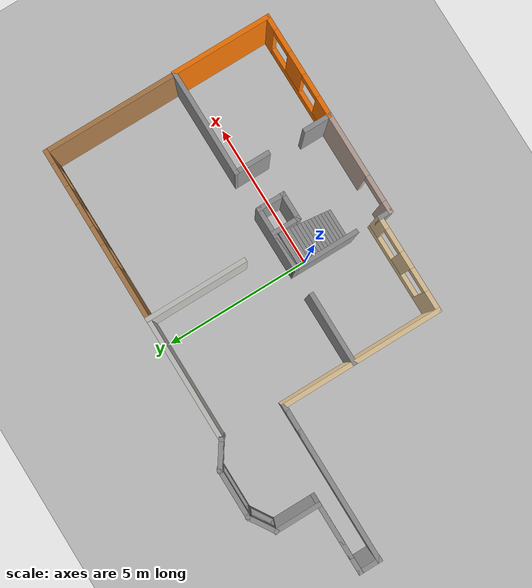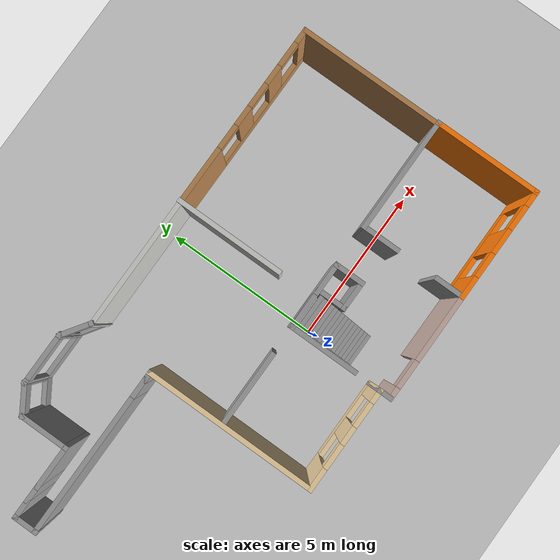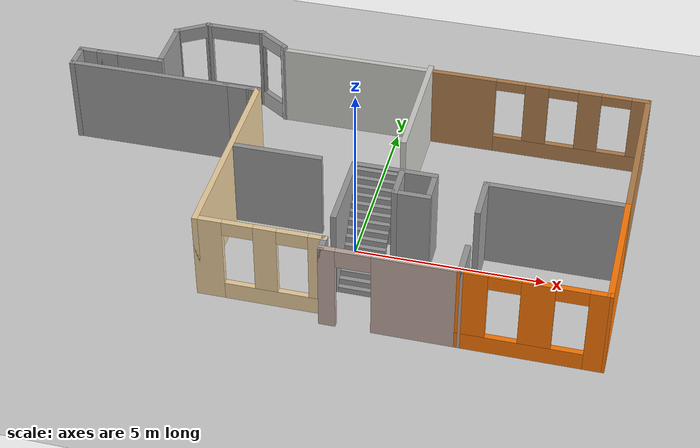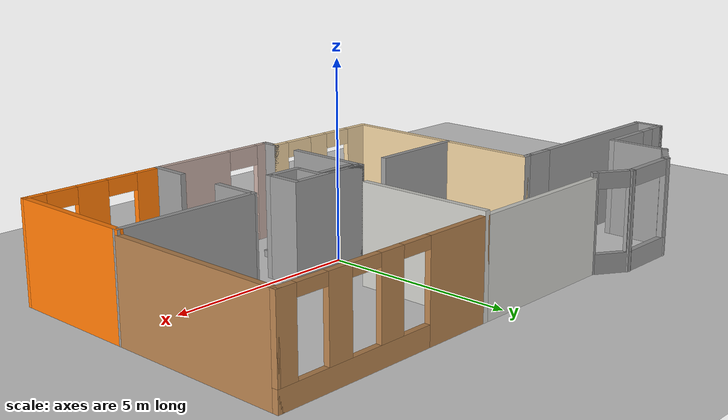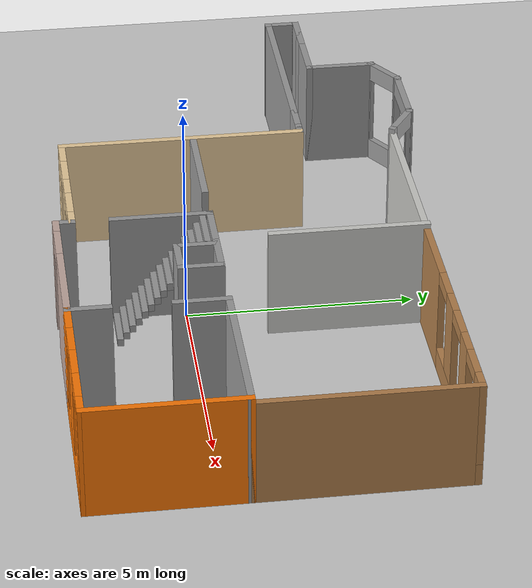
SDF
<sdf version="1.6">
 <world name="default">
  <model name="ground_plane">
   <static>1</static>
   <link name="link">
    <collision name="collision">
     <geometry><plane><normal>0 0 1</normal><size>100 100</size></plane></geometry>
     <surface><friction><ode><mu>100</mu><mu2>50</mu2></ode></friction></surface>
    </collision>
    <visual name="visual">
     <cast_shadows>0</cast_shadows>
     <geometry><plane><normal>0 0 1</normal><size>100 100</size></plane></geometry>
     <material>
      <script><uri>file://media/materials/scripts/gazebo.material</uri><name>Gazebo/Grey</name></script>
     </material>
    </visual>
   </link>
  </model>
  <model name="HousewDoors">
   <pose>-0.965733 1.44328 0 0 -0 0</pose>
   <link name="Stairs_0">
    <visual name="Stairs_0_Visual_0">
     <pose>1.43458 -2.97086 0.083333 0 -0 -3.14159</pose>
     <geometry><box><size>1.06538 0.136352 0.166667</size></box></geometry>
     <material>
      <script><uri>file://media/materials/scripts/gazebo.material</uri><name>Gazebo/Grey</name></script>
      <ambient>1 1 1 1</ambient>
     </material>
     <meta><layer>0</layer></meta>
    </visual>
    <collision name="Stairs_0_Collision_0">
     <geometry><box><size>1.06538 0.136352 0.166667</size></box></geometry>
     <pose>1.43458 -2.97086 0.083333 0 -0 -3.14159</pose>
    </collision>
    <visual name="Stairs_0_Visual_1">
     <pose>1.43458 -2.83451 0.25 0 -0 -3.14159</pose>
     <geometry><box><size>1.06538 0.136352 0.166667</size></box></geometry>
     <material>
      <script><uri>file://media/materials/scripts/gazebo.material</uri><name>Gazebo/Grey</name></script>
      <ambient>1 1 1 1</ambient>
     </material>
     <meta><layer>0</layer></meta>
    </visual>
    <collision name="Stairs_0_Collision_1">
     <geometry><box><size>1.06538 0.136352 0.166667</size></box></geometry>
     <pose>1.43458 -2.83451 0.25 0 -0 -3.14159</pose>
    </collision>
    <visual name="Stairs_0_Visual_2">
     <pose>1.43458 -2.69816 0.416667 0 -0 -3.14159</pose>
     <geometry><box><size>1.06538 0.136352 0.166667</size></box></geometry>
     <material>
      <script><uri>file://media/materials/scripts/gazebo.material</uri><name>Gazebo/Grey</name></script>
      <ambient>1 1 1 1</ambient>
     </material>
     <meta><layer>0</layer></meta>
    </visual>
    <collision name="Stairs_0_Collision_2">
     <geometry><box><size>1.06538 0.136352 0.166667</size></box></geometry>
     <pose>1.43458 -2.69816 0.416667 0 -0 -3.14159</pose>
    </collision>
    <visual name="Stairs_0_Visual_3">
     <pose>1.43458 -2.56181 0.583333 0 -0 -3.14159</pose>
     <geometry><box><size>1.06538 0.136352 0.166667</size></box></geometry>
     <material>
      <script><uri>file://media/materials/scripts/gazebo.material</uri><name>Gazebo/Grey</name></script>
      <ambient>1 1 1 1</ambient>
     </material>
     <meta><layer>0</layer></meta>
    </visual>
    <collision name="Stairs_0_Collision_3">
     <geometry><box><size>1.06538 0.136352 0.166667</size></box></geometry>
     <pose>1.43458 -2.56181 0.583333 0 -0 -3.14159</pose>
    </collision>
    <visual name="Stairs_0_Visual_4">
     <pose>1.43458 -2.42545 0.75 0 -0 -3.14159</pose>
     <geometry><box><size>1.06538 0.136352 0.166667</size></box></geometry>
     <material>
      <script><uri>file://media/materials/scripts/gazebo.material</uri><name>Gazebo/Grey</name></script>
      <ambient>1 1 1 1</ambient>
     </material>
     <meta><layer>0</layer></meta>
    </visual>
    <collision name="Stairs_0_Collision_4">
     <geometry><box><size>1.06538 0.136352 0.166667</size></box></geometry>
     <pose>1.43458 -2.42545 0.75 0 -0 -3.14159</pose>
    </collision>
    <visual name="Stairs_0_Visual_5">
     <pose>1.43458 -2.2891 0.916667 0 -0 -3.14159</pose>
     <geometry><box><size>1.06538 0.136352 0.166667</size></box></geometry>
     <material>
      <script><uri>file://media/materials/scripts/gazebo.material</uri><name>Gazebo/Grey</name></script>
      <ambient>1 1 1 1</ambient>
     </material>
     <meta><layer>0</layer></meta>
    </visual>
    <collision name="Stairs_0_Collision_5">
     <geometry><box><size>1.06538 0.136352 0.166667</size></box></geometry>
     <pose>1.43458 -2.2891 0.916667 0 -0 -3.14159</pose>
    </collision>
    <visual name="Stairs_0_Visual_6">
     <pose>1.43458 -2.15275 1.08333 0 -0 -3.14159</pose>
     <geometry><box><size>1.06538 0.136352 0.166667</size></box></geometry>
     <material>
      <script><uri>file://media/materials/scripts/gazebo.material</uri><name>Gazebo/Grey</name></script>
      <ambient>1 1 1 1</ambient>
     </material>
     <meta><layer>0</layer></meta>
    </visual>
    <collision name="Stairs_0_Collision_6">
     <geometry><box><size>1.06538 0.136352 0.166667</size></box></geometry>
     <pose>1.43458 -2.15275 1.08333 0 -0 -3.14159</pose>
    </collision>
    <visual name="Stairs_0_Visual_7">
     <pose>1.43458 -2.0164 1.25 0 -0 -3.14159</pose>
     <geometry><box><size>1.06538 0.136352 0.166667</size></box></geometry>
     <material>
      <script><uri>file://media/materials/scripts/gazebo.material</uri><name>Gazebo/Grey</name></script>
      <ambient>1 1 1 1</ambient>
     </material>
     <meta><layer>0</layer></meta>
    </visual>
    <collision name="Stairs_0_Collision_7">
     <geometry><box><size>1.06538 0.136352 0.166667</size></box></geometry>
     <pose>1.43458 -2.0164 1.25 0 -0 -3.14159</pose>
    </collision>
    <visual name="Stairs_0_Visual_8">
     <pose>1.43458 -1.88004 1.41667 0 -0 -3.14159</pose>
     <geometry><box><size>1.06538 0.136352 0.166667</size></box></geometry>
     <material>
      <script><uri>file://media/materials/scripts/gazebo.material</uri><name>Gazebo/Grey</name></script>
      <ambient>1 1 1 1</ambient>
     </material>
     <meta><layer>0</layer></meta>
    </visual>
    <collision name="Stairs_0_Collision_8">
     <geometry><box><size>1.06538 0.136352 0.166667</size></box></geometry>
     <pose>1.43458 -1.88004 1.41667 0 -0 -3.14159</pose>
    </collision>
    <visual name="Stairs_0_Visual_9">
     <pose>1.43458 -1.74369 1.58333 0 -0 -3.14159</pose>
     <geometry><box><size>1.06538 0.136352 0.166667</size></box></geometry>
     <material>
      <script><uri>file://media/materials/scripts/gazebo.material</uri><name>Gazebo/Grey</name></script>
      <ambient>1 1 1 1</ambient>
     </material>
     <meta><layer>0</layer></meta>
    </visual>
    <collision name="Stairs_0_Collision_9">
     <geometry><box><size>1.06538 0.136352 0.166667</size></box></geometry>
     <pose>1.43458 -1.74369 1.58333 0 -0 -3.14159</pose>
    </collision>
    <visual name="Stairs_0_Visual_10">
     <pose>1.43458 -1.60734 1.75 0 -0 -3.14159</pose>
     <geometry><box><size>1.06538 0.136352 0.166667</size></box></geometry>
     <material>
      <script><uri>file://media/materials/scripts/gazebo.material</uri><name>Gazebo/Grey</name></script>
      <ambient>1 1 1 1</ambient>
     </material>
     <meta><layer>0</layer></meta>
    </visual>
    <collision name="Stairs_0_Collision_10">
     <geometry><box><size>1.06538 0.136352 0.166667</size></box></geometry>
     <pose>1.43458 -1.60734 1.75 0 -0 -3.14159</pose>
    </collision>
    <visual name="Stairs_0_Visual_11">
     <pose>1.43458 -1.47099 1.91667 0 -0 -3.14159</pose>
     <geometry><box><size>1.06538 0.136352 0.166667</size></box></geometry>
     <material>
      <script><uri>file://media/materials/scripts/gazebo.material</uri><name>Gazebo/Grey</name></script>
      <ambient>1 1 1 1</ambient>
     </material>
     <meta><layer>0</layer></meta>
    </visual>
    <collision name="Stairs_0_Collision_11">
     <geometry><box><size>1.06538 0.136352 0.166667</size></box></geometry>
     <pose>1.43458 -1.47099 1.91667 0 -0 -3.14159</pose>
    </collision>
    <visual name="Stairs_0_Visual_12">
     <pose>1.43458 -1.33464 2.08333 0 -0 -3.14159</pose>
     <geometry><box><size>1.06538 0.136352 0.166667</size></box></geometry>
     <material>
      <script><uri>file://media/materials/scripts/gazebo.material</uri><name>Gazebo/Grey</name></script>
      <ambient>1 1 1 1</ambient>
     </material>
     <meta><layer>0</layer></meta>
    </visual>
    <collision name="Stairs_0_Collision_12">
     <geometry><box><size>1.06538 0.136352 0.166667</size></box></geometry>
     <pose>1.43458 -1.33464 2.08333 0 -0 -3.14159</pose>
    </collision>
    <visual name="Stairs_0_Visual_13">
     <pose>1.43458 -1.19828 2.25 0 -0 -3.14159</pose>
     <geometry><box><size>1.06538 0.136352 0.166667</size></box></geometry>
     <material>
      <script><uri>file://media/materials/scripts/gazebo.material</uri><name>Gazebo/Grey</name></script>
      <ambient>1 1 1 1</ambient>
     </material>
     <meta><layer>0</layer></meta>
    </visual>
    <collision name="Stairs_0_Collision_13">
     <geometry><box><size>1.06538 0.136352 0.166667</size></box></geometry>
     <pose>1.43458 -1.19828 2.25 0 -0 -3.14159</pose>
    </collision>
    <visual name="Stairs_0_Visual_14">
     <pose>1.43458 -1.06193 2.41667 0 -0 -3.14159</pose>
     <geometry><box><size>1.06538 0.136352 0.166667</size></box></geometry>
     <material>
      <script><uri>file://media/materials/scripts/gazebo.material</uri><name>Gazebo/Grey</name></script>
      <ambient>1 1 1 1</ambient>
     </material>
     <meta><layer>0</layer></meta>
    </visual>
    <collision name="Stairs_0_Collision_14">
     <geometry><box><size>1.06538 0.136352 0.166667</size></box></geometry>
     <pose>1.43458 -1.06193 2.41667 0 -0 -3.14159</pose>
    </collision>
   </link>
   <link name="Wall_103">
    <collision name="Wall_103_Collision">
     <geometry><box><size>4.521 0.15 2.5</size></box></geometry>
     <pose>0 0 1.25 0 -0 0</pose>
    </collision>
    <visual name="Wall_103_Visual">
     <pose>0 0 1.25 0 -0 0</pose>
     <geometry><box><size>4.521 0.15 2.5</size></box></geometry>
     <material>
      <script><uri>file://media/materials/scripts/gazebo.material</uri><name>Gazebo/Grey</name></script>
      <ambient>1 1 1 1</ambient>
     </material>
     <meta><layer>0</layer></meta>
    </visual>
    <pose>-5.58202 1.54901 0 0 -0 0</pose>
   </link>
   <link name="Wall_105">
    <pose>-3.05902 1.54901 0 0 -0 0</pose>
    <visual name="Wall_105_Visual_0">
     <pose>0 0 1.25 0 -0 0</pose>
     <geometry><box><size>0.825 0.15 2.5</size></box></geometry>
     <material>
      <script><uri>file://media/materials/scripts/gazebo.material</uri><name>Gazebo/Grey</name></script>
      <ambient>1 1 1 1</ambient>
     </material>
     <meta><layer>0</layer></meta>
    </visual>
    <collision name="Wall_105_Collision_0">
     <geometry><box><size>0.825 0.15 2.5</size></box></geometry>
     <pose>0 0 1.25 0 -0 0</pose>
    </collision>
    <visual name="Wall_105_Visual_1">
     <pose>0.332667 0 1.25 0 -0 0</pose>
     <geometry><box><size>0.159666 0.15 2.5</size></box></geometry>
     <material>
      <script><uri>file://media/materials/scripts/gazebo.material</uri><name>Gazebo/Grey</name></script>
      <ambient>1 1 1 1</ambient>
     </material>
     <meta><layer>0</layer></meta>
    </visual>
    <collision name="Wall_105_Collision_1">
     <geometry><box><size>0.159666 0.15 2.5</size></box></geometry>
     <pose>0.332667 0 1.25 0 -0 0</pose>
    </collision>
   </link>
   <link name="Wall_107">
    <collision name="Wall_107_Collision">
     <geometry><box><size>0.381 0.15 2.5</size></box></geometry>
     <pose>0 0 1.25 0 -0 0</pose>
    </collision>
    <visual name="Wall_107_Visual">
     <pose>0 0 1.25 0 -0 0</pose>
     <geometry><box><size>0.381 0.15 2.5</size></box></geometry>
     <material>
      <script><uri>file://media/materials/scripts/gazebo.material</uri><name>Gazebo/Grey</name></script>
      <ambient>1 1 1 1</ambient>
     </material>
     <meta><layer>0</layer></meta>
    </visual>
    <pose>-2.60602 1.54901 0 0 -0 0</pose>
   </link>
   <link name="Wall_130">
    <collision name="Wall_130_Collision">
     <geometry><box><size>5.549 0.15 2.5</size></box></geometry>
     <pose>0 0 1.25 0 -0 0</pose>
    </collision>
    <visual name="Wall_130_Visual">
     <pose>0 0 1.25 0 -0 0</pose>
     <geometry><box><size>5.549 0.15 2.5</size></box></geometry>
     <material>
      <script><uri>file://media/materials/scripts/gazebo.material</uri><name>Gazebo/Grey</name></script>
      <ambient>0.921569 0.807843 0.615686 1</ambient>
     </material>
     <meta><layer>0</layer></meta>
    </visual>
    <pose>-2.49052 -1.15049 0 0 0 -1.5708</pose>
   </link>
   <link name="Wall_134">
    <pose>-0.851021 -3.84999 0 0 -0 0</pose>
    <visual name="Wall_134_Visual_0">
     <pose>-1.33647 0 1.25 0 -0 0</pose>
     <geometry><box><size>0.756056 0.15 2.5</size></box></geometry>
     <material>
      <script><uri>file://media/materials/scripts/gazebo.material</uri><name>Gazebo/Grey</name></script>
      <ambient>0.921569 0.807843 0.615686 1</ambient>
     </material>
     <meta><layer>0</layer></meta>
    </visual>
    <collision name="Wall_134_Collision_0">
     <geometry><box><size>0.756056 0.15 2.5</size></box></geometry>
     <pose>-1.33647 0 1.25 0 -0 0</pose>
    </collision>
    <visual name="Wall_134_Visual_1">
     <pose>0.378028 0 0.25 0 -0 0</pose>
     <geometry><box><size>2.67294 0.15 0.5</size></box></geometry>
     <material>
      <script><uri>file://media/materials/scripts/gazebo.material</uri><name>Gazebo/Grey</name></script>
      <ambient>0.921569 0.807843 0.615686 1</ambient>
     </material>
     <meta><layer>0</layer></meta>
    </visual>
    <collision name="Wall_134_Collision_1">
     <geometry><box><size>2.67294 0.15 0.5</size></box></geometry>
     <pose>0.378028 0 0.25 0 -0 0</pose>
    </collision>
    <visual name="Wall_134_Visual_2">
     <pose>0.136222 0 1.5 0 -0 0</pose>
     <geometry><box><size>0.589333 0.15 2</size></box></geometry>
     <material>
      <script><uri>file://media/materials/scripts/gazebo.material</uri><name>Gazebo/Grey</name></script>
      <ambient>0.921569 0.807843 0.615686 1</ambient>
     </material>
     <meta><layer>0</layer></meta>
    </visual>
    <collision name="Wall_134_Collision_2">
     <geometry><box><size>0.589333 0.15 2</size></box></geometry>
     <pose>0.136222 0 1.5 0 -0 0</pose>
    </collision>
    <visual name="Wall_134_Visual_3">
     <pose>1.47269 0 1.5 0 -0 0</pose>
     <geometry><box><size>0.483612 0.15 2</size></box></geometry>
     <material>
      <script><uri>file://media/materials/scripts/gazebo.material</uri><name>Gazebo/Grey</name></script>
      <ambient>0.921569 0.807843 0.615686 1</ambient>
     </material>
     <meta><layer>0</layer></meta>
    </visual>
    <collision name="Wall_134_Collision_3">
     <geometry><box><size>0.483612 0.15 2</size></box></geometry>
     <pose>1.47269 0 1.5 0 -0 0</pose>
    </collision>
    <visual name="Wall_134_Visual_4">
     <pose>-0.558444 0 2.3 0 -0 0</pose>
     <geometry><box><size>0.8 0.15 0.4</size></box></geometry>
     <material>
      <script><uri>file://media/materials/scripts/gazebo.material</uri><name>Gazebo/Grey</name></script>
      <ambient>0.921569 0.807843 0.615686 1</ambient>
     </material>
     <meta><layer>0</layer></meta>
    </visual>
    <collision name="Wall_134_Collision_4">
     <geometry><box><size>0.8 0.15 0.4</size></box></geometry>
     <pose>-0.558444 0 2.3 0 -0 0</pose>
    </collision>
    <visual name="Wall_134_Visual_5">
     <pose>0.830888 0 2.3 0 -0 0</pose>
     <geometry><box><size>0.8 0.15 0.4</size></box></geometry>
     <material>
      <script><uri>file://media/materials/scripts/gazebo.material</uri><name>Gazebo/Grey</name></script>
      <ambient>0.921569 0.807843 0.615686 1</ambient>
     </material>
     <meta><layer>0</layer></meta>
    </visual>
    <collision name="Wall_134_Collision_5">
     <geometry><box><size>0.8 0.15 0.4</size></box></geometry>
     <pose>0.830888 0 2.3 0 -0 0</pose>
    </collision>
   </link>
   <link name="Wall_138">
    <collision name="Wall_138_Collision">
     <geometry><box><size>0.5 0.15 2.5</size></box></geometry>
     <pose>0 0 1.25 0 -0 0</pose>
    </collision>
    <visual name="Wall_138_Visual">
     <pose>0 0 1.25 0 -0 0</pose>
     <geometry><box><size>0.5 0.15 2.5</size></box></geometry>
     <material>
      <script><uri>file://media/materials/scripts/gazebo.material</uri><name>Gazebo/Grey</name></script>
      <ambient>1 1 1 1</ambient>
     </material>
     <meta><layer>0</layer></meta>
    </visual>
    <pose>0.788479 -4.02499 0 0 0 -1.5708</pose>
   </link>
   <link name="Wall_150">
    <collision name="Wall_150_Collision">
     <geometry><box><size>3.46 0.15 2.5</size></box></geometry>
     <pose>0 0 1.25 0 -0 0</pose>
    </collision>
    <visual name="Wall_150_Visual">
     <pose>0 0 1.25 0 -0 0</pose>
     <geometry><box><size>3.46 0.15 2.5</size></box></geometry>
     <material>
      <script><uri>file://media/materials/scripts/gazebo.material</uri><name>Gazebo/Grey</name></script>
      <ambient>0.996078 0.47451 0.0196078 1</ambient>
     </material>
     <meta><layer>0</layer></meta>
    </visual>
    <pose>7.76748 -2.54299 0 0 0 -1.5708</pose>
   </link>
   <link name="Wall_152">
    <pose>5.98798 -4.19899 0 0 0 -3.14103</pose>
    <visual name="Wall_152_Visual_0">
     <pose>-1.58033 0 1.25 0 -0 0</pose>
     <geometry><box><size>0.548349 0.15 2.5</size></box></geometry>
     <material>
      <script><uri>file://media/materials/scripts/gazebo.material</uri><name>Gazebo/Grey</name></script>
      <ambient>0.996078 0.47451 0.0196078 1</ambient>
     </material>
     <meta><layer>0</layer></meta>
    </visual>
    <collision name="Wall_152_Collision_0">
     <geometry><box><size>0.548349 0.15 2.5</size></box></geometry>
     <pose>-1.58033 0 1.25 0 -0 0</pose>
    </collision>
    <visual name="Wall_152_Visual_1">
     <pose>0.274174 0 0.25 0 -0 0</pose>
     <geometry><box><size>3.16065 0.15 0.5</size></box></geometry>
     <material>
      <script><uri>file://media/materials/scripts/gazebo.material</uri><name>Gazebo/Grey</name></script>
      <ambient>0.996078 0.47451 0.0196078 1</ambient>
     </material>
     <meta><layer>0</layer></meta>
    </visual>
    <collision name="Wall_152_Collision_1">
     <geometry><box><size>3.16065 0.15 0.5</size></box></geometry>
     <pose>0.274174 0 0.25 0 -0 0</pose>
    </collision>
    <visual name="Wall_152_Visual_2">
     <pose>-0.097892 0 1.5 0 -0 0</pose>
     <geometry><box><size>0.816519 0.15 2</size></box></geometry>
     <material>
      <script><uri>file://media/materials/scripts/gazebo.material</uri><name>Gazebo/Grey</name></script>
      <ambient>0.996078 0.47451 0.0196078 1</ambient>
     </material>
     <meta><layer>0</layer></meta>
    </visual>
    <collision name="Wall_152_Collision_2">
     <geometry><box><size>0.816519 0.15 2</size></box></geometry>
     <pose>-0.097892 0 1.5 0 -0 0</pose>
    </collision>
    <visual name="Wall_152_Visual_3">
     <pose>1.48243 0 1.5 0 -0 0</pose>
     <geometry><box><size>0.744133 0.15 2</size></box></geometry>
     <material>
      <script><uri>file://media/materials/scripts/gazebo.material</uri><name>Gazebo/Grey</name></script>
      <ambient>0.996078 0.47451 0.0196078 1</ambient>
     </material>
     <meta><layer>0</layer></meta>
    </visual>
    <collision name="Wall_152_Collision_3">
     <geometry><box><size>0.744133 0.15 2</size></box></geometry>
     <pose>1.48243 0 1.5 0 -0 0</pose>
    </collision>
    <visual name="Wall_152_Visual_4">
     <pose>-0.906151 0 2.3 0 -0 0</pose>
     <geometry><box><size>0.8 0.15 0.4</size></box></geometry>
     <material>
      <script><uri>file://media/materials/scripts/gazebo.material</uri><name>Gazebo/Grey</name></script>
      <ambient>0.996078 0.47451 0.0196078 1</ambient>
     </material>
     <meta><layer>0</layer></meta>
    </visual>
    <collision name="Wall_152_Collision_4">
     <geometry><box><size>0.8 0.15 0.4</size></box></geometry>
     <pose>-0.906151 0 2.3 0 -0 0</pose>
    </collision>
    <visual name="Wall_152_Visual_5">
     <pose>0.710367 0 2.3 0 -0 0</pose>
     <geometry><box><size>0.8 0.15 0.4</size></box></geometry>
     <material>
      <script><uri>file://media/materials/scripts/gazebo.material</uri><name>Gazebo/Grey</name></script>
      <ambient>0.996078 0.47451 0.0196078 1</ambient>
     </material>
     <meta><layer>0</layer></meta>
    </visual>
    <collision name="Wall_152_Collision_5">
     <geometry><box><size>0.8 0.15 0.4</size></box></geometry>
     <pose>0.710367 0 2.3 0 -0 0</pose>
    </collision>
   </link>
   <link name="Wall_159">
    <pose>2.49848 -4.19999 0 0 -0 0</pose>
    <visual name="Wall_159_Visual_0">
     <pose>-1.56997 0 1.25 0 -0 0</pose>
     <geometry><box><size>0.430049 0.15 2.5</size></box></geometry>
     <material>
      <script><uri>file://media/materials/scripts/gazebo.material</uri><name>Gazebo/Grey</name></script>
      <ambient>0.760784 0.662745 0.627451 1</ambient>
     </material>
     <meta><layer>0</layer></meta>
    </visual>
    <collision name="Wall_159_Collision_0">
     <geometry><box><size>0.430049 0.15 2.5</size></box></geometry>
     <pose>-1.56997 0 1.25 0 -0 0</pose>
    </collision>
    <visual name="Wall_159_Visual_1">
     <pose>0.665025 0 1.25 0 -0 0</pose>
     <geometry><box><size>2.23995 0.15 2.5</size></box></geometry>
     <material>
      <script><uri>file://media/materials/scripts/gazebo.material</uri><name>Gazebo/Grey</name></script>
      <ambient>0.760784 0.662745 0.627451 1</ambient>
     </material>
     <meta><layer>0</layer></meta>
    </visual>
    <collision name="Wall_159_Collision_1">
     <geometry><box><size>2.23995 0.15 2.5</size></box></geometry>
     <pose>0.665025 0 1.25 0 -0 0</pose>
    </collision>
    <visual name="Wall_159_Visual_2">
     <pose>-0.904951 0 2.25 0 -0 0</pose>
     <geometry><box><size>0.9 0.15 0.5</size></box></geometry>
     <material>
      <script><uri>file://media/materials/scripts/gazebo.material</uri><name>Gazebo/Grey</name></script>
      <ambient>0.760784 0.662745 0.627451 1</ambient>
     </material>
     <meta><layer>0</layer></meta>
    </visual>
    <collision name="Wall_159_Collision_2">
     <geometry><box><size>0.9 0.15 0.5</size></box></geometry>
     <pose>-0.904951 0 2.25 0 -0 0</pose>
    </collision>
   </link>
   <link name="Wall_168">
    <collision name="Wall_168_Collision">
     <geometry><box><size>2.25 0.15 2.5</size></box></geometry>
     <pose>0 0 1.25 0 -0 0</pose>
    </collision>
    <visual name="Wall_168_Visual">
     <pose>0 0 1.25 0 -0 0</pose>
     <geometry><box><size>2.25 0.15 2.5</size></box></geometry>
     <material>
      <script><uri>file://media/materials/scripts/gazebo.material</uri><name>Gazebo/Grey</name></script>
      <ambient>1 1 1 1</ambient>
     </material>
     <meta><layer>0</layer></meta>
    </visual>
    <pose>0.800479 -1.93799 0 0 0 -1.5708</pose>
   </link>
   <link name="Wall_170">
    <collision name="Wall_170_Collision">
     <geometry><box><size>2.5 0.15 2.5</size></box></geometry>
     <pose>0 0 1.25 0 -0 0</pose>
    </collision>
    <visual name="Wall_170_Visual">
     <pose>0 0 1.25 0 -0 0</pose>
     <geometry><box><size>2.5 0.15 2.5</size></box></geometry>
     <material>
      <script><uri>file://media/materials/scripts/gazebo.material</uri><name>Gazebo/Grey</name></script>
      <ambient>1 1 1 1</ambient>
     </material>
     <meta><layer>0</layer></meta>
    </visual>
    <pose>-1.30352 -0.887988 0 0 -0 0</pose>
   </link>
   <link name="Wall_172">
    <collision name="Wall_172_Collision">
     <geometry><box><size>1.171 0.15 2.5</size></box></geometry>
     <pose>0 0 1.25 0 -0 0</pose>
    </collision>
    <visual name="Wall_172_Visual">
     <pose>0 0 1.25 0 -0 0</pose>
     <geometry><box><size>1.171 0.15 2.5</size></box></geometry>
     <material>
      <script><uri>file://media/materials/scripts/gazebo.material</uri><name>Gazebo/Grey</name></script>
      <ambient>1 1 1 1</ambient>
     </material>
     <meta><layer>0</layer></meta>
    </visual>
    <pose>1.31098 -0.887988 0 0 -0 0</pose>
   </link>
   <link name="Wall_174">
    <collision name="Wall_174_Collision">
     <geometry><box><size>3.5 0.15 2.5</size></box></geometry>
     <pose>0 0 1.25 0 -0 0</pose>
    </collision>
    <visual name="Wall_174_Visual">
     <pose>0 0 1.25 0 -0 0</pose>
     <geometry><box><size>3.5 0.15 2.5</size></box></geometry>
     <material>
      <script><uri>file://media/materials/scripts/gazebo.material</uri><name>Gazebo/CeilingTiled</name></script>
      <ambient>1 1 1 1</ambient>
     </material>
     <meta><layer>0</layer></meta>
    </visual>
    <pose>1.82148 1.98601 0 0 0 -1.5708</pose>
   </link>
   <link name="Wall_176">
    <collision name="Wall_176_Collision">
     <geometry><box><size>1.25 0.15 2.5</size></box></geometry>
     <pose>0 0 1.25 0 -0 0</pose>
    </collision>
    <visual name="Wall_176_Visual">
     <pose>0 0 1.25 0 -0 0</pose>
     <geometry><box><size>1.25 0.15 2.5</size></box></geometry>
     <material>
      <script><uri>file://media/materials/scripts/gazebo.material</uri><name>Gazebo/Grey</name></script>
      <ambient>1 1 1 1</ambient>
     </material>
     <meta><layer>0</layer></meta>
    </visual>
    <pose>4.20848 -1.43999 0 0 0 -1.5708</pose>
   </link>
   <link name="Wall_178">
    <collision name="Wall_178_Collision">
     <geometry><box><size>1 0.15 2.5</size></box></geometry>
     <pose>0 0 1.25 0 -0 0</pose>
    </collision>
    <visual name="Wall_178_Visual">
     <pose>0 0 1.25 0 -0 0</pose>
     <geometry><box><size>1 0.15 2.5</size></box></geometry>
     <material>
      <script><uri>file://media/materials/scripts/gazebo.material</uri><name>Gazebo/Grey</name></script>
      <ambient>1 1 1 1</ambient>
     </material>
     <meta><layer>0</layer></meta>
    </visual>
    <pose>4.20848 -3.77499 0 0 -0 1.5708</pose>
   </link>
   <link name="Wall_182">
    <collision name="Wall_182_Collision">
     <geometry><box><size>2.25 0.15 2.5</size></box></geometry>
     <pose>0 0 1.25 0 -0 0</pose>
    </collision>
    <visual name="Wall_182_Visual">
     <pose>0 0 1.25 0 -0 0</pose>
     <geometry><box><size>2.25 0.15 2.5</size></box></geometry>
     <material>
      <script><uri>file://media/materials/scripts/gazebo.material</uri><name>Gazebo/Grey</name></script>
      <ambient>1 1 1 1</ambient>
     </material>
     <meta><layer>0</layer></meta>
    </visual>
    <pose>1.85048 -0.887988 0 0 -0 0</pose>
   </link>
   <link name="Wall_184">
    <collision name="Wall_184_Collision">
     <geometry><box><size>3.709 0.15 2.5</size></box></geometry>
     <pose>0 0 1.25 0 -0 0</pose>
    </collision>
    <visual name="Wall_184_Visual">
     <pose>0 0 1.25 0 -0 0</pose>
     <geometry><box><size>3.709 0.15 2.5</size></box></geometry>
     <material>
      <script><uri>file://media/materials/scripts/gazebo.material</uri><name>Gazebo/Grey</name></script>
      <ambient>1 1 1 1</ambient>
     </material>
     <meta><layer>0</layer></meta>
    </visual>
    <pose>5.98798 -0.888988 0 0 -0 0.000562</pose>
   </link>
   <link name="Wall_186">
    <collision name="Wall_186_Collision">
     <geometry><box><size>1 0.15 2.5</size></box></geometry>
     <pose>0 0 1.25 0 -0 0</pose>
    </collision>
    <visual name="Wall_186_Visual">
     <pose>0 0 1.25 0 -0 0</pose>
     <geometry><box><size>1 0.15 2.5</size></box></geometry>
     <material>
      <script><uri>file://media/materials/scripts/gazebo.material</uri><name>Gazebo/Grey</name></script>
      <ambient>1 1 1 1</ambient>
     </material>
     <meta><layer>0</layer></meta>
    </visual>
    <pose>2.90048 -1.31299 0 0 0 -1.5708</pose>
   </link>
   <link name="Wall_187">
    <collision name="Wall_187_Collision">
     <geometry><box><size>1 0.15 2.5</size></box></geometry>
     <pose>0 0 1.25 0 -0 0</pose>
    </collision>
    <visual name="Wall_187_Visual">
     <pose>0 0 1.25 0 -0 0</pose>
     <geometry><box><size>1 0.15 2.5</size></box></geometry>
     <material>
      <script><uri>file://media/materials/scripts/gazebo.material</uri><name>Gazebo/Grey</name></script>
      <ambient>1 1 1 1</ambient>
     </material>
     <meta><layer>0</layer></meta>
    </visual>
    <pose>2.47548 -1.73799 0 0 -0 3.14159</pose>
   </link>
   <link name="Wall_188">
    <collision name="Wall_188_Collision">
     <geometry><box><size>1 0.15 2.5</size></box></geometry>
     <pose>0 0 1.25 0 -0 0</pose>
    </collision>
    <visual name="Wall_188_Visual">
     <pose>0 0 1.25 0 -0 0</pose>
     <geometry><box><size>1 0.15 2.5</size></box></geometry>
     <material>
      <script><uri>file://media/materials/scripts/gazebo.material</uri><name>Gazebo/Grey</name></script>
      <ambient>1 1 1 1</ambient>
     </material>
     <meta><layer>0</layer></meta>
    </visual>
    <pose>2.05048 -1.31299 0 0 -0 1.5708</pose>
   </link>
   <link name="Wall_45">
    <collision name="Wall_45_Collision">
     <geometry><box><size>4.699 0.15 2.387</size></box></geometry>
     <pose>0 0 1.1935 0 -0 0</pose>
    </collision>
    <visual name="Wall_45_Visual">
     <pose>0 0 1.1935 0 -0 0</pose>
     <geometry><box><size>4.699 0.15 2.387</size></box></geometry>
     <material>
      <script><uri>file://media/materials/scripts/gazebo.material</uri><name>Gazebo/Wood</name></script>
      <ambient>0.435294 0.796078 0.67451 1</ambient>
     </material>
     <meta><layer>0</layer></meta>
    </visual>
    <pose>7.76748 1.38651 0 0 -0 1.5708</pose>
   </link>
   <link name="Wall_49">
    <pose>4.79448 3.66101 0 0 -0 0</pose>
    <visual name="Wall_49_Visual_0">
     <pose>-2.09334 0 1.1935 0 -0 0</pose>
     <geometry><box><size>1.90931 0.15 2.387</size></box></geometry>
     <material>
      <script><uri>file://media/materials/scripts/gazebo.material</uri><name>Gazebo/Wood</name></script>
      <ambient>0.435294 0.796078 0.67451 1</ambient>
     </material>
     <meta><layer>0</layer></meta>
    </visual>
    <collision name="Wall_49_Collision_0">
     <geometry><box><size>1.90931 0.15 2.387</size></box></geometry>
     <pose>-2.09334 0 1.1935 0 -0 0</pose>
    </collision>
    <visual name="Wall_49_Visual_1">
     <pose>0.954655 0 0.25 0 -0 0</pose>
     <geometry><box><size>4.18669 0.15 0.5</size></box></geometry>
     <material>
      <script><uri>file://media/materials/scripts/gazebo.material</uri><name>Gazebo/Wood</name></script>
      <ambient>0.435294 0.796078 0.67451 1</ambient>
     </material>
     <meta><layer>0</layer></meta>
    </visual>
    <collision name="Wall_49_Collision_1">
     <geometry><box><size>4.18669 0.15 0.5</size></box></geometry>
     <pose>0.954655 0 0.25 0 -0 0</pose>
    </collision>
    <visual name="Wall_49_Visual_2">
     <pose>-0.015012 0 1.4435 0 -0 0</pose>
     <geometry><box><size>0.647358 0.15 1.887</size></box></geometry>
     <material>
      <script><uri>file://media/materials/scripts/gazebo.material</uri><name>Gazebo/Wood</name></script>
      <ambient>0.435294 0.796078 0.67451 1</ambient>
     </material>
     <meta><layer>0</layer></meta>
    </visual>
    <collision name="Wall_49_Collision_2">
     <geometry><box><size>0.647358 0.15 1.887</size></box></geometry>
     <pose>-0.015012 0 1.4435 0 -0 0</pose>
    </collision>
    <visual name="Wall_49_Visual_3">
     <pose>1.42295 0 1.4435 0 -0 0</pose>
     <geometry><box><size>0.628561 0.15 1.887</size></box></geometry>
     <material>
      <script><uri>file://media/materials/scripts/gazebo.material</uri><name>Gazebo/Wood</name></script>
      <ambient>0.435294 0.796078 0.67451 1</ambient>
     </material>
     <meta><layer>0</layer></meta>
    </visual>
    <collision name="Wall_49_Collision_3">
     <geometry><box><size>0.628561 0.15 1.887</size></box></geometry>
     <pose>1.42295 0 1.4435 0 -0 0</pose>
    </collision>
    <visual name="Wall_49_Visual_4">
     <pose>2.79261 0 1.4435 0 -0 0</pose>
     <geometry><box><size>0.510772 0.15 1.887</size></box></geometry>
     <material>
      <script><uri>file://media/materials/scripts/gazebo.material</uri><name>Gazebo/Wood</name></script>
      <ambient>0.435294 0.796078 0.67451 1</ambient>
     </material>
     <meta><layer>0</layer></meta>
    </visual>
    <collision name="Wall_49_Collision_4">
     <geometry><box><size>0.510772 0.15 1.887</size></box></geometry>
     <pose>2.79261 0 1.4435 0 -0 0</pose>
    </collision>
    <visual name="Wall_49_Visual_5">
     <pose>-0.738691 0 2.2435 0 -0 0</pose>
     <geometry><box><size>0.8 0.15 0.287</size></box></geometry>
     <material>
      <script><uri>file://media/materials/scripts/gazebo.material</uri><name>Gazebo/Wood</name></script>
      <ambient>0.435294 0.796078 0.67451 1</ambient>
     </material>
     <meta><layer>0</layer></meta>
    </visual>
    <collision name="Wall_49_Collision_5">
     <geometry><box><size>0.8 0.15 0.287</size></box></geometry>
     <pose>-0.738691 0 2.2435 0 -0 0</pose>
    </collision>
    <visual name="Wall_49_Visual_6">
     <pose>0.708667 0 2.2435 0 -0 0</pose>
     <geometry><box><size>0.8 0.15 0.287</size></box></geometry>
     <material>
      <script><uri>file://media/materials/scripts/gazebo.material</uri><name>Gazebo/Wood</name></script>
      <ambient>0.435294 0.796078 0.67451 1</ambient>
     </material>
     <meta><layer>0</layer></meta>
    </visual>
    <collision name="Wall_49_Collision_6">
     <geometry><box><size>0.8 0.15 0.287</size></box></geometry>
     <pose>0.708667 0 2.2435 0 -0 0</pose>
    </collision>
    <visual name="Wall_49_Visual_7">
     <pose>2.13723 0 2.2435 0 -0 0</pose>
     <geometry><box><size>0.8 0.15 0.287</size></box></geometry>
     <material>
      <script><uri>file://media/materials/scripts/gazebo.material</uri><name>Gazebo/Wood</name></script>
      <ambient>0.435294 0.796078 0.67451 1</ambient>
     </material>
     <meta><layer>0</layer></meta>
    </visual>
    <collision name="Wall_49_Collision_7">
     <geometry><box><size>0.8 0.15 0.287</size></box></geometry>
     <pose>2.13723 0 2.2435 0 -0 0</pose>
    </collision>
   </link>
   <link name="Wall_51">
    <collision name="Wall_51_Collision">
     <geometry><box><size>4.318 0.15 2.387</size></box></geometry>
     <pose>0 0 1.1935 0 -0 0</pose>
    </collision>
    <visual name="Wall_51_Visual">
     <pose>0 0 1.1935 0 -0 0</pose>
     <geometry><box><size>4.318 0.15 2.387</size></box></geometry>
     <material>
      <script><uri>file://media/materials/scripts/gazebo.material</uri><name>Gazebo/CeilingTiled</name></script>
      <ambient>1 1 1 1</ambient>
     </material>
     <meta><layer>0</layer></meta>
    </visual>
    <pose>-0.262521 3.66101 0 0 -0 3.14159</pose>
   </link>
   <link name="Wall_75">
    <pose>-2.72852 3.91601 0 0 -0 2.55299</pose>
    <visual name="Wall_75_Visual_0">
     <pose>-0.464244 0 1.25 0 -0 0</pose>
     <geometry><box><size>0.140095 0.15 2.5</size></box></geometry>
     <material>
      <script><uri>file://media/materials/scripts/gazebo.material</uri><name>Gazebo/Grey</name></script>
      <ambient>1 1 1 1</ambient>
     </material>
     <meta><layer>0</layer></meta>
    </visual>
    <collision name="Wall_75_Collision_0">
     <geometry><box><size>0.140095 0.15 2.5</size></box></geometry>
     <pose>-0.464244 0 1.25 0 -0 0</pose>
    </collision>
    <visual name="Wall_75_Visual_1">
     <pose>0.070048 0 0.25 0 -0 0</pose>
     <geometry><box><size>0.928489 0.15 0.5</size></box></geometry>
     <material>
      <script><uri>file://media/materials/scripts/gazebo.material</uri><name>Gazebo/Grey</name></script>
      <ambient>1 1 1 1</ambient>
     </material>
     <meta><layer>0</layer></meta>
    </visual>
    <collision name="Wall_75_Collision_1">
     <geometry><box><size>0.928489 0.15 0.5</size></box></geometry>
     <pose>0.070048 0 0.25 0 -0 0</pose>
    </collision>
    <visual name="Wall_75_Visual_2">
     <pose>0.470048 0 1.5 0 -0 0</pose>
     <geometry><box><size>0.128489 0.15 2</size></box></geometry>
     <material>
      <script><uri>file://media/materials/scripts/gazebo.material</uri><name>Gazebo/Grey</name></script>
      <ambient>1 1 1 1</ambient>
     </material>
     <meta><layer>0</layer></meta>
    </visual>
    <collision name="Wall_75_Collision_2">
     <geometry><box><size>0.128489 0.15 2</size></box></geometry>
     <pose>0.470048 0 1.5 0 -0 0</pose>
    </collision>
    <visual name="Wall_75_Visual_3">
     <pose>0.005803 0 2.3 0 -0 0</pose>
     <geometry><box><size>0.8 0.15 0.4</size></box></geometry>
     <material>
      <script><uri>file://media/materials/scripts/gazebo.material</uri><name>Gazebo/Grey</name></script>
      <ambient>1 1 1 1</ambient>
     </material>
     <meta><layer>0</layer></meta>
    </visual>
    <collision name="Wall_75_Collision_3">
     <geometry><box><size>0.8 0.15 0.4</size></box></geometry>
     <pose>0.005803 0 2.3 0 -0 0</pose>
    </collision>
   </link>
   <link name="Wall_77">
    <pose>-3.91152 4.17101 0 0 -0 3.14159</pose>
    <visual name="Wall_77_Visual_0">
     <pose>-0.79612 0 1.25 0 -0 0</pose>
     <geometry><box><size>0.159759 0.15 2.5</size></box></geometry>
     <material>
      <script><uri>file://media/materials/scripts/gazebo.material</uri><name>Gazebo/Grey</name></script>
      <ambient>1 1 1 1</ambient>
     </material>
     <meta><layer>0</layer></meta>
    </visual>
    <collision name="Wall_77_Collision_0">
     <geometry><box><size>0.159759 0.15 2.5</size></box></geometry>
     <pose>-0.79612 0 1.25 0 -0 0</pose>
    </collision>
    <visual name="Wall_77_Visual_1">
     <pose>0.07988 0 0.25 0 -0 0</pose>
     <geometry><box><size>1.59224 0.15 0.5</size></box></geometry>
     <material>
      <script><uri>file://media/materials/scripts/gazebo.material</uri><name>Gazebo/Grey</name></script>
      <ambient>1 1 1 1</ambient>
     </material>
     <meta><layer>0</layer></meta>
    </visual>
    <collision name="Wall_77_Collision_1">
     <geometry><box><size>1.59224 0.15 0.5</size></box></geometry>
     <pose>0.07988 0 0.25 0 -0 0</pose>
    </collision>
    <visual name="Wall_77_Visual_2">
     <pose>0.77988 0 1.5 0 -0 0</pose>
     <geometry><box><size>0.192241 0.15 2</size></box></geometry>
     <material>
      <script><uri>file://media/materials/scripts/gazebo.material</uri><name>Gazebo/Grey</name></script>
      <ambient>1 1 1 1</ambient>
     </material>
     <meta><layer>0</layer></meta>
    </visual>
    <collision name="Wall_77_Collision_2">
     <geometry><box><size>0.192241 0.15 2</size></box></geometry>
     <pose>0.77988 0 1.5 0 -0 0</pose>
    </collision>
    <visual name="Wall_77_Visual_3">
     <pose>-0.016241 0 2.3 0 -0 0</pose>
     <geometry><box><size>1.4 0.15 0.4</size></box></geometry>
     <material>
      <script><uri>file://media/materials/scripts/gazebo.material</uri><name>Gazebo/Grey</name></script>
      <ambient>1 1 1 1</ambient>
     </material>
     <meta><layer>0</layer></meta>
    </visual>
    <collision name="Wall_77_Collision_3">
     <geometry><box><size>1.4 0.15 0.4</size></box></geometry>
     <pose>-0.016241 0 2.3 0 -0 0</pose>
    </collision>
   </link>
   <link name="Wall_83">
    <pose>-5.09452 3.92851 0 0 -0 0.565627</pose>
    <visual name="Wall_83_Visual_0">
     <pose>-0.460988 0 1.25 0 -0 0</pose>
     <geometry><box><size>0.132966 0.15 2.5</size></box></geometry>
     <material>
      <script><uri>file://media/materials/scripts/gazebo.material</uri><name>Gazebo/Grey</name></script>
      <ambient>1 1 1 1</ambient>
     </material>
     <meta><layer>0</layer></meta>
    </visual>
    <collision name="Wall_83_Collision_0">
     <geometry><box><size>0.132966 0.15 2.5</size></box></geometry>
     <pose>-0.460988 0 1.25 0 -0 0</pose>
    </collision>
    <visual name="Wall_83_Visual_1">
     <pose>0.066483 0 0.25 0 -0 0</pose>
     <geometry><box><size>0.921977 0.15 0.5</size></box></geometry>
     <material>
      <script><uri>file://media/materials/scripts/gazebo.material</uri><name>Gazebo/Grey</name></script>
      <ambient>1 1 1 1</ambient>
     </material>
     <meta><layer>0</layer></meta>
    </visual>
    <collision name="Wall_83_Collision_1">
     <geometry><box><size>0.921977 0.15 0.5</size></box></geometry>
     <pose>0.066483 0 0.25 0 -0 0</pose>
    </collision>
    <visual name="Wall_83_Visual_2">
     <pose>0.466483 0 1.5 0 -0 0</pose>
     <geometry><box><size>0.121977 0.15 2</size></box></geometry>
     <material>
      <script><uri>file://media/materials/scripts/gazebo.material</uri><name>Gazebo/Grey</name></script>
      <ambient>1 1 1 1</ambient>
     </material>
     <meta><layer>0</layer></meta>
    </visual>
    <collision name="Wall_83_Collision_2">
     <geometry><box><size>0.121977 0.15 2</size></box></geometry>
     <pose>0.466483 0 1.5 0 -0 0</pose>
    </collision>
    <visual name="Wall_83_Visual_3">
     <pose>0.005494 0 2.3 0 -0 0</pose>
     <geometry><box><size>0.8 0.15 0.4</size></box></geometry>
     <material>
      <script><uri>file://media/materials/scripts/gazebo.material</uri><name>Gazebo/Grey</name></script>
      <ambient>1 1 1 1</ambient>
     </material>
     <meta><layer>0</layer></meta>
    </visual>
    <collision name="Wall_83_Collision_3">
     <geometry><box><size>0.8 0.15 0.4</size></box></geometry>
     <pose>0.005494 0 2.3 0 -0 0</pose>
    </collision>
   </link>
   <link name="Wall_85">
    <collision name="Wall_85_Collision">
     <geometry><box><size>1.625 0.15 2.5</size></box></geometry>
     <pose>0 0 1.25 0 -0 0</pose>
    </collision>
    <visual name="Wall_85_Visual">
     <pose>0 0 1.25 0 -0 0</pose>
     <geometry><box><size>1.625 0.15 2.5</size></box></geometry>
     <material>
      <script><uri>file://media/materials/scripts/gazebo.material</uri><name>Gazebo/Grey</name></script>
      <ambient>1 1 1 1</ambient>
     </material>
     <meta><layer>0</layer></meta>
    </visual>
    <pose>-5.47652 2.94851 0 0 0 -1.5708</pose>
   </link>
   <link name="Wall_87">
    <collision name="Wall_87_Collision">
     <geometry><box><size>1.447 0.15 2.5</size></box></geometry>
     <pose>0 0 1.25 0 -0 0</pose>
    </collision>
    <visual name="Wall_87_Visual">
     <pose>0 0 1.25 0 -0 0</pose>
     <geometry><box><size>1.447 0.15 2.5</size></box></geometry>
     <material>
      <script><uri>file://media/materials/scripts/gazebo.material</uri><name>Gazebo/Grey</name></script>
      <ambient>1 1 1 1</ambient>
     </material>
     <meta><layer>0</layer></meta>
    </visual>
    <pose>-6.12502 2.21101 0 0 -0 3.14159</pose>
   </link>
   <link name="Wall_89">
    <collision name="Wall_89_Collision">
     <geometry><box><size>0.609 0.15 2.5</size></box></geometry>
     <pose>0 0 1.25 0 -0 0</pose>
    </collision>
    <visual name="Wall_89_Visual">
     <pose>0 0 1.25 0 -0 0</pose>
     <geometry><box><size>0.609 0.15 2.5</size></box></geometry>
     <material>
      <script><uri>file://media/materials/scripts/gazebo.material</uri><name>Gazebo/Grey</name></script>
      <ambient>1 1 1 1</ambient>
     </material>
     <meta><layer>0</layer></meta>
    </visual>
    <pose>-7.00302 2.21101 0 0 -0 3.14159</pose>
   </link>
   <link name="Wall_91">
    <collision name="Wall_91_Collision">
     <geometry><box><size>0.685 0.15 2.5</size></box></geometry>
     <pose>0 0 1.25 0 -0 0</pose>
    </collision>
    <visual name="Wall_91_Visual">
     <pose>0 0 1.25 0 -0 0</pose>
     <geometry><box><size>0.685 0.15 2.5</size></box></geometry>
     <material>
      <script><uri>file://media/materials/scripts/gazebo.material</uri><name>Gazebo/Grey</name></script>
      <ambient>1 1 1 1</ambient>
     </material>
     <meta><layer>0</layer></meta>
    </visual>
    <pose>-7.50002 2.21101 0 0 -0 3.14159</pose>
   </link>
   <link name="Wall_93">
    <collision name="Wall_93_Collision">
     <geometry><box><size>0.16 0.15 2.5</size></box></geometry>
     <pose>0 0 1.25 0 -0 0</pose>
    </collision>
    <visual name="Wall_93_Visual">
     <pose>0 0 1.25 0 -0 0</pose>
     <geometry><box><size>0.16 0.15 2.5</size></box></geometry>
     <material>
      <script><uri>file://media/materials/scripts/gazebo.material</uri><name>Gazebo/Grey</name></script>
      <ambient>1 1 1 1</ambient>
     </material>
     <meta><layer>0</layer></meta>
    </visual>
    <pose>-7.76752 2.20601 0 0 0 -1.5708</pose>
   </link>
   <link name="Wall_95">
    <collision name="Wall_95_Collision">
     <geometry><box><size>0.812 0.15 2.5</size></box></geometry>
     <pose>0 0 1.25 0 -0 0</pose>
    </collision>
    <visual name="Wall_95_Visual">
     <pose>0 0 1.25 0 -0 0</pose>
     <geometry><box><size>0.812 0.15 2.5</size></box></geometry>
     <material>
      <script><uri>file://media/materials/scripts/gazebo.material</uri><name>Gazebo/Grey</name></script>
      <ambient>1 1 1 1</ambient>
     </material>
     <meta><layer>0</layer></meta>
    </visual>
    <pose>-7.76752 1.88001 0 0 0 -1.5708</pose>
   </link>
   <link name="Wall_97">
    <collision name="Wall_97_Collision">
     <geometry><box><size>0.16 0.15 2.5</size></box></geometry>
     <pose>0 0 1.25 0 -0 0</pose>
    </collision>
    <visual name="Wall_97_Visual">
     <pose>0 0 1.25 0 -0 0</pose>
     <geometry><box><size>0.16 0.15 2.5</size></box></geometry>
     <material>
      <script><uri>file://media/materials/scripts/gazebo.material</uri><name>Gazebo/Grey</name></script>
      <ambient>1 1 1 1</ambient>
     </material>
     <meta><layer>0</layer></meta>
    </visual>
    <pose>-7.76752 1.54401 0 0 0 -1.5708</pose>
   </link>
   <static>1</static>
  </model>
 </world>
</sdf>
